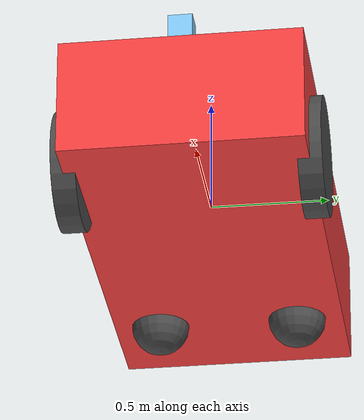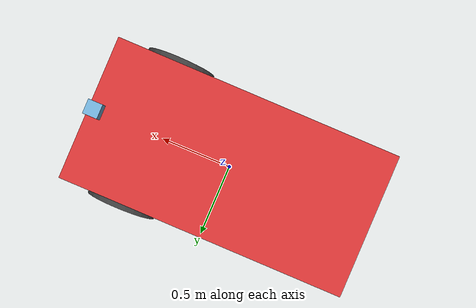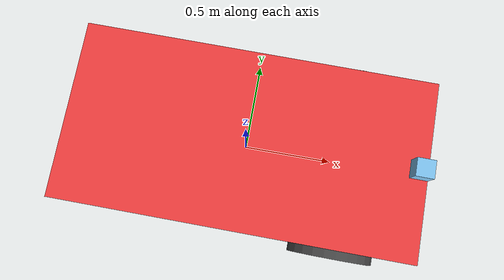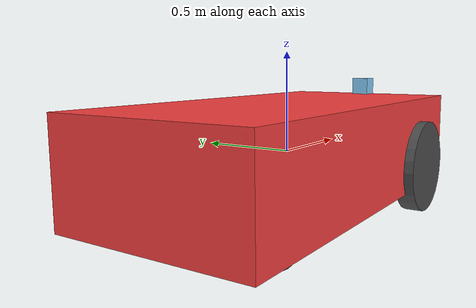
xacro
<?xml version='1.0'?>
<robot xmlns:xacro="http://www.ros.org/wiki/xacro" name="2wheel_drive_car">

    <!-- car body -->
    <link name="car_body::link" />

    <xacro:include filename="car_body/model.xacro"/>
    <joint name="carbodylink_2_carbody" type="fixed">
        <parent link="car_body::link"/>
        <child link="car_body"/>
    </joint>

    <!-- car ball wheel, rear wheels -->
    <xacro:include filename="car_ball_wheel/model.xacro"/>

    <xacro:car_ball_wheel name="rear_left_ball_wheel"/>
    <joint name="rear_left_ball_wheel_2_body" type="continuous">
        <origin xyz="${-(car_body_length/2) + (car_body_length/5)} ${(car_body_width/2) - (car_body_width/5)} ${-(car_body_height/2)}" rpy="0.0 0.0 0.0"/>
        <parent link="car_body"/>
        <child link="rear_left_ball_wheel"/>
        <axis xyz="0 1 0"/>
        <dynamics friction="0.5"/>
    </joint>

    <xacro:car_ball_wheel name="rear_right_ball_wheel"/>
    <joint name="rear_right_ball_wheel_2_body" type="continuous">
        <origin xyz="${-(car_body_length/2) + (car_body_length/5)} ${-(car_body_width/2) + (car_body_width/5)} ${-(car_body_height/2)}" rpy="0.0 0.0 0.0"/>
        <parent link="car_body"/>
        <child link="rear_right_ball_wheel"/>
        <axis xyz="0 1 0"/>
        <dynamics friction="0.5"/>
    </joint>

    <!-- base footprint location -->
    <link name="base_footprint"/>
    <joint name="base_link" type="fixed">
        <parent link="car_body"/>
        <child link="base_footprint"/>
        <origin xyz="0 0 ${-(car_body_height/2) - car_ball_wheel_radius}" rpy="0 0 0"/>
    </joint>

    <!-- car regular front wheels -->
    <xacro:include filename="car_wheel/model.xacro"/>

    <xacro:car_wheel name="front_left_wheel"/>
    <joint name="front_left_wheel_2_body" type="continuous">
        <origin xyz="${+(car_body_length/2) - (car_body_length/5)} ${(car_body_width/2)} ${-(car_body_height/2) + (car_wheel_radius - car_ball_wheel_radius)}" rpy="${-pi/2} 0 0"/>
        <parent link="car_body"/>
        <child link="front_left_wheel"/>
        <axis xyz="0 0 1"/>
        <dynamics friction="0.5"/>
    </joint>

    <xacro:car_wheel name="front_right_wheel"/>
    <joint name="front_right_wheel_2_body" type="continuous">
        <origin xyz="${+(car_body_length/2) - (car_body_length/5)} ${-(car_body_width/2)} ${-(car_body_height/2) + (car_wheel_radius - car_ball_wheel_radius)}" rpy="${-pi/2} 0 0"/>
        <parent link="car_body"/>
        <child link="front_right_wheel"/>
        <axis xyz="0 0 1"/>
        <dynamics friction="0.5"/>
    </joint>

    <xacro:include filename="car_camera/model.xacro"/>
    <joint name="camera_2_body" type="fixed">
        <origin xyz="${+(car_body_length/2) - (camera_length/2)} 0 ${car_body_height/2 + camera_length/2}" rpy="0 0 0"/>
        <parent link="car_body"/>
        <child link="car_camera"/>
    </joint>

    <gazebo>
        <plugin filename="ignition-gazebo-diff-drive-system" name="ignition::gazebo::systems::DiffDrive">
            <left_joint>front_left_wheel_2_body</left_joint>
            <right_joint>front_right_wheel_2_body</right_joint>
            <wheel_separation>1</wheel_separation>
            <wheel_radius>${car_wheel_radius}</wheel_radius>
            <odom_publish_frequency>1</odom_publish_frequency>
            <max_linear_acceleration>1</max_linear_acceleration>
            <min_linear_acceleration>-1</min_linear_acceleration>
            <max_angular_acceleration>2</max_angular_acceleration>
            <min_angular_acceleration>-2</min_angular_acceleration>
            <max_linear_velocity>0.5</max_linear_velocity>
            <min_linear_velocity>-0.5</min_linear_velocity>
            <max_angular_velocity>1</max_angular_velocity>
            <min_angular_velocity>-1</min_angular_velocity>
        </plugin>
    </gazebo>

</robot>

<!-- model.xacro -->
<robot xmlns:xacro="http://www.ros.org/wiki/xacro" name="car_body">
    <xacro:property name="car_body_mass" value="10"/>
    <xacro:property name="car_body_width" value="1"/>
    <xacro:property name="car_body_height" value="0.5"/>
    <xacro:property name="car_body_length" value="2"/>
    <xacro:property name="car_body_geometry">
        <geometry>
            <box size="${car_body_length} ${car_body_width} ${car_body_height}"/>
        </geometry>
    </xacro:property>
    <material name="car_body_color">
        <color rgba="0.97 0.25 0.25 1"/>
    </material>
    <gazebo reference="car_body">
        <material>
            <diffuse> 0.97 0.25 0.25 1 </diffuse>
            <specular> 0.2 0.2 0.2 1  </specular>
            <emissive> 0 0 0 1 </emissive>
            <ambient> 0.35 0.15 0.15 1 </ambient>
        </material>
    </gazebo>
    <link name="car_body">
        <inertial>
            <mass value="${car_body_mass}"/>
            <origin xyz="0 0 0" rpy="0 0 0"/>
            <inertia ixx="${(5/12) * (car_body_width * car_body_width + car_body_height* car_body_height)}" ixy="0" ixz="0" iyy="${(5/12) * (car_body_length * car_body_length + car_body_height * car_body_height)}" iyz="0" izz="${(5/12) * (car_body_width * car_body_width + car_body_length * car_body_length)}" />
        </inertial>
        <visual>
            <xacro:insert_block name="car_body_geometry"/>
            <material name="car_body_color"/>
        </visual>
        <collision>
            <xacro:insert_block name="car_body_geometry"/>
        </collision>
    </link>
</robot>

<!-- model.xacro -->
<robot xmlns:xacro="http://www.ros.org/wiki/xacro" name="car_ball_wheel">
    <xacro:property name="car_ball_wheel_radius" value="0.125" />
    <xacro:property name="car_ball_wheel_mass" value="0.5" />
    <xacro:property name="car_ball_wheel_geometry">
        <geometry>
            <sphere radius="${car_ball_wheel_radius}"/>
        </geometry>
    </xacro:property>
    <xacro:property name="car_ball_wheel_mass"/>
    <material name="car_ball_wheel_width">
        <color rgba="0.3 0.3 0.3 1"/>
    </material>

    <xacro:macro name="car_ball_wheel" params="name">
        <gazebo reference="${name}">
            <material>
                <diffuse> 0.3 0.3 0.3 1 </diffuse>
                <specular> 0 0.2 0.2 1  </specular>
                <emissive> 0 0 0 1 </emissive>
                <ambient> 0.1 0.1 0.1 1 </ambient>
            </material>
        </gazebo>

        <link name="${name}">
            <inertial>
                <mass value="${car_ball_wheel_mass}"/>
                <inertia ixx="${(2/5)*(car_ball_wheel_mass)*(car_ball_wheel_radius)*(car_ball_wheel_radius)}" ixy="0.0" ixz="0.0" iyy="${(2/5)*(car_ball_wheel_mass)*(car_ball_wheel_radius)*(car_ball_wheel_radius)}" iyz="0.0" izz="${(2/5)*(car_ball_wheel_mass)*(car_ball_wheel_radius)*(car_ball_wheel_radius)}"/>
            </inertial>
            <visual>
                <xacro:insert_block name="car_ball_wheel_geometry"/>
                <material name="car_ball_wheel_width"/>
            </visual>
            <collision>
                <xacro:insert_block name="car_ball_wheel_geometry"/>
            </collision>
        </link>
    </xacro:macro>
</robot>

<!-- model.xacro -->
<robot xmlns:xacro="http://www.ros.org/wiki/xacro" name="car_car_ball_wheel">
    <xacro:property name="car_wheel_radius" value="0.25" />
    <xacro:property name="car_wheel_mass" value="0.5" />
    <xacro:property name="car_wheel_width" value="0.1"/>
    <xacro:property name="car_wheel_geometry">
        <geometry>
            <cylinder radius="${car_wheel_radius}" length="${car_wheel_width}"/>
        </geometry>
    </xacro:property>
    <xacro:property name="car_wheel_mass"/>
    <material name="car_wheel_color">
        <color rgba="0.3 0.3 0.3 1"/>
    </material>

    <xacro:macro name="car_wheel" params="name">
        <gazebo reference="${name}">
            <material>
                <diffuse> 0.3 0.3 0.3 1 </diffuse>
                <specular> 0 0.2 0.2 1  </specular>
                <emissive> 0 0 0 1 </emissive>
                <ambient> 0.1 0.1 0.1 1 </ambient>
            </material>
        </gazebo>

        <link name="${name}">
            <inertial>
                <mass value="${car_wheel_mass}"/>
                <inertia ixx="${(1/12) * car_wheel_mass * (3 * car_wheel_radius * car_wheel_radius + car_wheel_width *car_wheel_width)}" ixy="0" ixz="0" iyy="${(1/12) * car_wheel_mass * (3 * car_wheel_radius * car_wheel_radius + car_wheel_width * car_wheel_width)}" iyz="0" izz="${(1/2) * car_wheel_mass * car_wheel_radius * car_wheel_radius}"/>
            </inertial>
            <collision>
                <xacro:insert_block name="car_wheel_geometry"/>
            </collision>
            <visual>
                <xacro:insert_block name="car_wheel_geometry"/>
                <material name="car_wheel_color"/>
            </visual>
        </link>
    </xacro:macro>
</robot>

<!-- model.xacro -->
<robot xmlns:xacro="http://www.ros.org/wiki/xacro" name="car_camera">
    <xacro:property name="camera_length" value="0.1"/>
    <xacro:property name="car_camera_geometry">
        <geometry>
            <box size="${camera_length} ${camera_length} ${camera_length}"/>
        </geometry>
    </xacro:property>
    <material name="camera_color">
        <color rgba="0.52 0.8 0.98 1"/>
    </material>

    <gazebo reference="car_camera">
        <material>
            <diffuse> 0.52 0.8 0.98 1 </diffuse>
            <specular> 0.2 0.2 0.2 0  </specular>
            <emissive> 0 0 0 1 </emissive>
            <ambient> 0.114 0.16 0.196 1 </ambient>
        </material>
    </gazebo>

    <link name="car_camera">
        <inertial>
            <mass value="0.1"/>
            <origin xyz="0 0 0" rpy="0 0 0"/>
            <inertia ixx="0.000166667" ixy="0" ixz="0" iyy="0.000166667" iyz="0" izz="0.000166667"/>
        </inertial>
        <collision>
            <origin xyz="0 0 0" rpy="0 0 3.14"/>
            <xacro:insert_block name="car_camera_geometry"/>
        </collision>
        <visual>
            <origin xyz="0 0 0" rpy="0 0 3.14"/>
            <xacro:insert_block name="car_camera_geometry"/>
            <material name="camera_color"/>
        </visual>
    </link>
    <gazebo reference="car_camera">
        <sensor type="camera" name="car_camera">
            <update_rate>24</update_rate>
            <visualize>true</visualize>
            <camera name="head">
                <horizontal_fov>1.3962634</horizontal_fov>
                <image>
                    <width>640</width>
                    <height>480</height>
                    <format>R8G8B8</format>
                </image>
                <clip>
                    <near>0.02</near>
                    <far>300</far>
                </clip>
            </camera>
            <plugin name="camera_controller" filename="libgazebo_ros_camera.so">
                <ros>
                    <argument>--ros-args --remap image_raw:=image_raw</argument>
                    <argument>--ros-args --remap camera_info:=camera_info</argument>
                </ros>
            </plugin>
        </sensor>
    </gazebo>
</robot>
